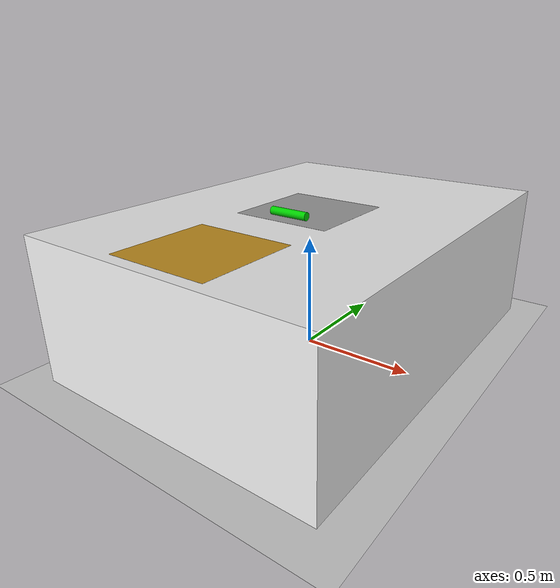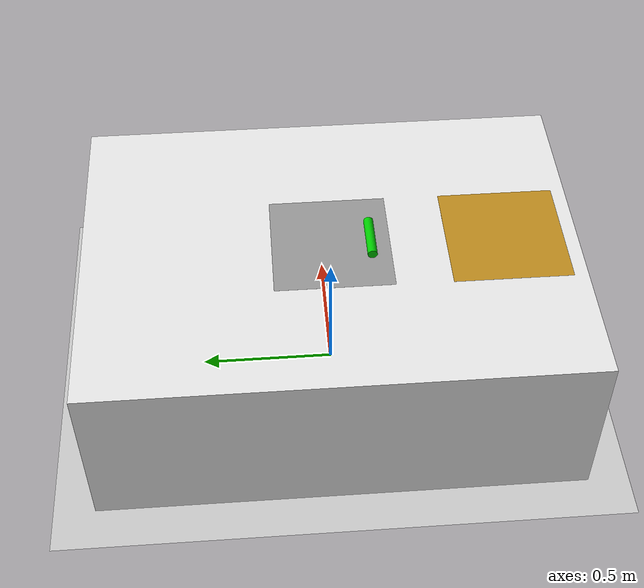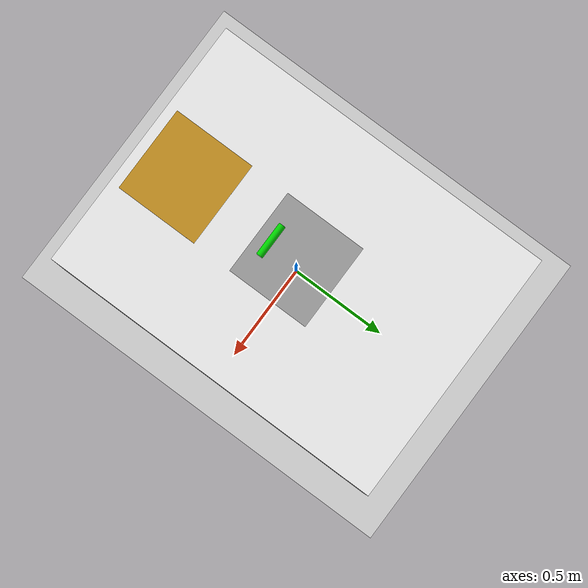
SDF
<sdf version="1.7">
 <world name="default">
  <light name="sun" type="directional">
   <pose>0 0 10 0 -0 0</pose>
   <diffuse>0.8 0.8 0.8 1</diffuse>
   <specular>0.2 0.2 0.2 1</specular>
   <attenuation>
    <range>1000</range>
    <constant>0.9</constant>
    <linear>0.01</linear>
    <quadratic>0.001</quadratic>
   </attenuation>
   <direction>-0.5 0.1 -0.9</direction>
   <spot><inner_angle>0</inner_angle><outer_angle>0</outer_angle><falloff>0</falloff></spot>
  </light>
  <model name="ground_plane">
   <static>1</static>
   <link name="link">
    <collision name="collision">
     <geometry><plane><normal>0 0 1</normal><size>100 100</size></plane></geometry>
     <surface><friction><ode><mu>100</mu><mu2>50</mu2></ode></friction></surface>
    </collision>
    <visual name="visual">
     <cast_shadows>0</cast_shadows>
     <geometry><plane><normal>0 0 1</normal><size>100 100</size></plane></geometry>
     <material>
      <script><uri>file://media/materials/scripts/gazebo.material</uri><name>Gazebo/Grey</name></script>
     </material>
    </visual>
   </link>
  </model>
  <gravity>0 0 -9.8</gravity>
  <magnetic_field>6e-06 2.3e-05 -4.2e-05</magnetic_field>
  <atmosphere type="adiabatic"/>
  <physics type="ode">
   <max_step_size>0.001</max_step_size>
   <real_time_factor>1</real_time_factor>
   <real_time_update_rate>1000</real_time_update_rate>
  </physics>
  <scene><ambient>0.4 0.4 0.4 1</ambient><background>0.7 0.7 0.7 1</background><shadows>1</shadows></scene>
  <spherical_coordinates>
   <surface_model>EARTH_WGS84</surface_model>
   <latitude_deg>0</latitude_deg>
   <longitude_deg>0</longitude_deg>
   <elevation>0</elevation>
   <heading_deg>0</heading_deg>
  </spherical_coordinates>
  <light name="user_spot_light_0" type="spot">
   <pose>0.026974 -0.123911 1 0 -0 0</pose>
   <diffuse>1 1 1 1</diffuse>
   <specular>1 1 1 1</specular>
   <direction>0 0 -1</direction>
   <attenuation>
    <range>20</range>
    <constant>0.15</constant>
    <linear>0.01</linear>
    <quadratic>0.001</quadratic>
   </attenuation>
   <cast_shadows>0</cast_shadows>
   <spot><inner_angle>0.6</inner_angle><outer_angle>1</outer_angle><falloff>1</falloff></spot>
  </light>
  <model name="unit_box">
   <link name="link">
    <inertial>
     <mass>5.02171</mass>
     <inertia><ixx>2.53938</ixx><ixy>0</ixy><ixz>0</ixz><iyy>4.87413</iyy><iyz>0</iyz><izz>7.08283</izz></inertia>
    </inertial>
    <visual name="visual">
     <geometry><box><size>1.3207 1.78601 0.628566</size></box></geometry>
     <material>
      <script><name>Gazebo/White</name><uri>file://media/materials/scripts/gazebo.material</uri></script>
      <shader type="pixel"><normal_map>__default__</normal_map></shader>
      <ambient>0.3 0.3 0.3 1</ambient>
      <diffuse>0.7 0.7 0.7 1</diffuse>
      <specular>0.5 0.01 0.01 1</specular>
      <emissive>0 0 0 1</emissive>
     </material>
    </visual>
    <collision name="collision">
     <geometry><box><size>1.3207 1.78601 0.628566</size></box></geometry>
     <surface>
      <friction>
       <ode><mu>1</mu><mu2>1</mu2><fdir1>0 0 0</fdir1><slip1>0</slip1><slip2>0</slip2></ode>
       <torsional>
        <coefficient>1</coefficient>
        <patch_radius>0</patch_radius>
        <surface_radius>0</surface_radius>
        <use_patch_radius>1</use_patch_radius>
        <ode><slip>0</slip></ode>
       </torsional>
      </friction>
      <bounce><restitution_coefficient>0</restitution_coefficient><threshold>1e+06</threshold></bounce>
      <contact>
       <collide_without_contact>0</collide_without_contact>
       <collide_without_contact_bitmask>1</collide_without_contact_bitmask>
       <collide_bitmask>1</collide_bitmask>
       <ode>
        <soft_cfm>0</soft_cfm>
        <soft_erp>0.2</soft_erp>
        <kp>1e+13</kp>
        <kd>1</kd>
        <max_vel>0.01</max_vel>
        <min_depth>0</min_depth>
       </ode>
       <bullet>
        <split_impulse>1</split_impulse>
        <split_impulse_penetration_threshold>-0.01</split_impulse_penetration_threshold>
        <soft_cfm>0</soft_cfm>
        <soft_erp>0.2</soft_erp>
        <kp>1e+13</kp>
        <kd>1</kd>
       </bullet>
      </contact>
     </surface>
    </collision>
   </link>
   <static>1</static>
   <allow_auto_disable>0</allow_auto_disable>
   <pose>0 0 0.314283 0 -0 0</pose>
  </model>
  <model name="plate">
   <link name="link">
    <inertial>
     <mass>1</mass>
     <inertia>
      <ixx>0.166667</ixx>
      <ixy>0</ixy>
      <ixz>0</ixz>
      <iyy>0.166667</iyy>
      <iyz>0</iyz>
      <izz>0.166667</izz>
     </inertia>
    </inertial>
    <visual name="visual">
     <geometry><box><size>0.440536 0.42671 0.00292805</size></box></geometry>
     <material>
      <script><name>Gazebo/Grey</name><uri>file://media/materials/scripts/gazebo.material</uri></script>
      <shader type="pixel"><normal_map>__default__</normal_map></shader>
      <diffuse>1 1 1 0</diffuse>
      <ambient>0.3 0.3 0.3 1</ambient>
      <specular>0.01 0.01 0.01 1</specular>
      <emissive>0 0 0 0.5</emissive>
     </material>
    </visual>
    <collision name="collision">
     <geometry><box><size>0.440536 0.42671 0.00292805</size></box></geometry>
     <surface>
      <friction>
       <ode><mu>1</mu><mu2>1</mu2><fdir1>0 0 0</fdir1><slip1>0</slip1><slip2>0</slip2></ode>
       <torsional>
        <coefficient>1</coefficient>
        <patch_radius>0</patch_radius>
        <surface_radius>0</surface_radius>
        <use_patch_radius>1</use_patch_radius>
        <ode><slip>0</slip></ode>
       </torsional>
      </friction>
      <bounce><restitution_coefficient>0</restitution_coefficient><threshold>1e+06</threshold></bounce>
      <contact>
       <collide_without_contact>0</collide_without_contact>
       <collide_without_contact_bitmask>1</collide_without_contact_bitmask>
       <collide_bitmask>1</collide_bitmask>
       <ode>
        <soft_cfm>0</soft_cfm>
        <soft_erp>0.2</soft_erp>
        <kp>1e+13</kp>
        <kd>1</kd>
        <max_vel>0.01</max_vel>
        <min_depth>0</min_depth>
       </ode>
       <bullet>
        <split_impulse>1</split_impulse>
        <split_impulse_penetration_threshold>-0.01</split_impulse_penetration_threshold>
        <soft_cfm>0</soft_cfm>
        <soft_erp>0.2</soft_erp>
        <kp>1e+13</kp>
        <kd>1</kd>
       </bullet>
      </contact>
     </surface>
    </collision>
   </link>
   <static>1</static>
   <pose>0 0 0.627228 0 -0 0</pose>
  </model>
  <model name="cylinder_g">
   <link name="link">
    <inertial>
     <mass>1</mass>
     <inertia><ixx>0.145833</ixx><ixy>0</ixy><ixz>0</ixz><iyy>0.145833</iyy><iyz>0</iyz><izz>0.125</izz></inertia>
    </inertial>
    <pose>0 0 0 0 1.56627 0</pose>
    <visual name="visual">
     <geometry><cylinder><radius>0.0176485</radius><length>0.172837</length></cylinder></geometry>
     <material>
      <script><name>Gazebo/Grey</name><uri>file://media/materials/scripts/gazebo.material</uri></script>
      <shader type="pixel"><normal_map>__default__</normal_map></shader>
      <diffuse>0 0.8 0 0</diffuse>
      <ambient>0.3 0.3 0.3 1</ambient>
      <specular>0.01 0.01 0.01 1</specular>
      <emissive>0 0 0 1</emissive>
     </material>
    </visual>
    <collision name="collision">
     <geometry><cylinder><radius>0.0176485</radius><length>0.172837</length></cylinder></geometry>
     <surface>
      <friction>
       <ode><mu>1</mu><mu2>1</mu2><fdir1>0 0 0</fdir1><slip1>0</slip1><slip2>0</slip2></ode>
       <torsional>
        <coefficient>1</coefficient>
        <patch_radius>0</patch_radius>
        <surface_radius>0</surface_radius>
        <use_patch_radius>1</use_patch_radius>
        <ode><slip>0</slip></ode>
       </torsional>
      </friction>
      <bounce><restitution_coefficient>0</restitution_coefficient><threshold>1e+06</threshold></bounce>
      <contact>
       <collide_without_contact>0</collide_without_contact>
       <collide_without_contact_bitmask>1</collide_without_contact_bitmask>
       <collide_bitmask>1</collide_bitmask>
       <ode>
        <soft_cfm>0</soft_cfm>
        <soft_erp>0.2</soft_erp>
        <kp>1e+13</kp>
        <kd>1</kd>
        <max_vel>0.01</max_vel>
        <min_depth>0</min_depth>
       </ode>
       <bullet>
        <split_impulse>1</split_impulse>
        <split_impulse_penetration_threshold>-0.01</split_impulse_penetration_threshold>
        <soft_cfm>0</soft_cfm>
        <soft_erp>0.2</soft_erp>
        <kp>1e+13</kp>
        <kd>1</kd>
       </bullet>
      </contact>
     </surface>
    </collision>
   </link>
   <static>0</static>
   <pose>0.000569 -0.143312 0.646341 8.6e-05 0.004526 -3e-05</pose>
  </model>
  <model name="plate_clone">
   <link name="link">
    <inertial>
     <mass>1</mass>
     <inertia>
      <ixx>0.166667</ixx>
      <ixy>0</ixy>
      <ixz>0</ixz>
      <iyy>0.166667</iyy>
      <iyz>0</iyz>
      <izz>0.166667</izz>
     </inertia>
    </inertial>
    <visual name="visual">
     <geometry><box><size>0.440536 0.42671 0.002928</size></box></geometry>
     <material>
      <script><name>Gazebo/Grey</name><uri>file://media/materials/scripts/gazebo.material</uri></script>
      <shader type="pixel"><normal_map>__default__</normal_map></shader>
      <diffuse>0.75 0.55 0.12 0</diffuse>
      <ambient>0.3 0.3 0.3 1</ambient>
      <specular>0.01 0.01 0.01 1</specular>
      <emissive>0 0 0 0.5</emissive>
     </material>
    </visual>
    <collision name="collision">
     <geometry><box><size>0.440536 0.42671 0.002928</size></box></geometry>
     <surface>
      <friction>
       <ode><mu>1</mu><mu2>1</mu2><fdir1>0 0 0</fdir1><slip1>0</slip1><slip2>0</slip2></ode>
       <torsional>
        <coefficient>1</coefficient>
        <patch_radius>0</patch_radius>
        <surface_radius>0</surface_radius>
        <use_patch_radius>1</use_patch_radius>
        <ode><slip>0</slip></ode>
       </torsional>
      </friction>
      <bounce><restitution_coefficient>0</restitution_coefficient><threshold>1e+06</threshold></bounce>
      <contact>
       <collide_without_contact>0</collide_without_contact>
       <collide_without_contact_bitmask>1</collide_without_contact_bitmask>
       <collide_bitmask>1</collide_bitmask>
       <ode>
        <soft_cfm>0</soft_cfm>
        <soft_erp>0.2</soft_erp>
        <kp>1e+13</kp>
        <kd>1</kd>
        <max_vel>0.01</max_vel>
        <min_depth>0</min_depth>
       </ode>
       <bullet>
        <split_impulse>1</split_impulse>
        <split_impulse_penetration_threshold>-0.01</split_impulse_penetration_threshold>
        <soft_cfm>0</soft_cfm>
        <soft_erp>0.2</soft_erp>
        <kp>1e+13</kp>
        <kd>1</kd>
       </bullet>
      </contact>
     </surface>
    </collision>
   </link>
   <static>1</static>
   <pose>-0.002396 -0.629237 0.627228 0 -0 0</pose>
  </model>
 </world>
</sdf>
